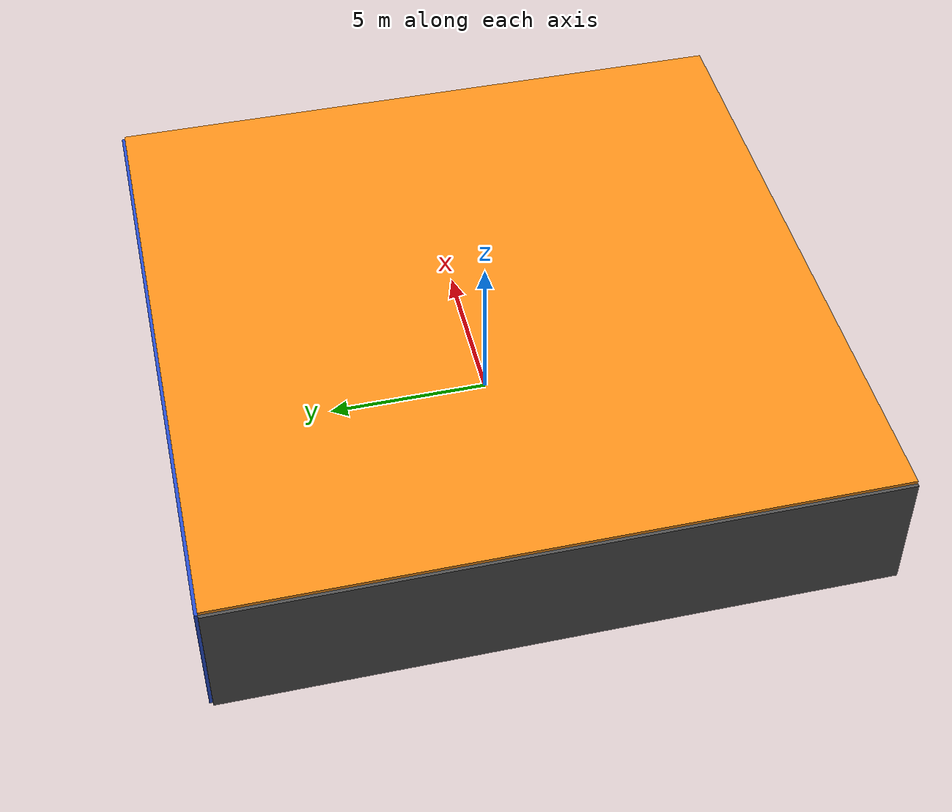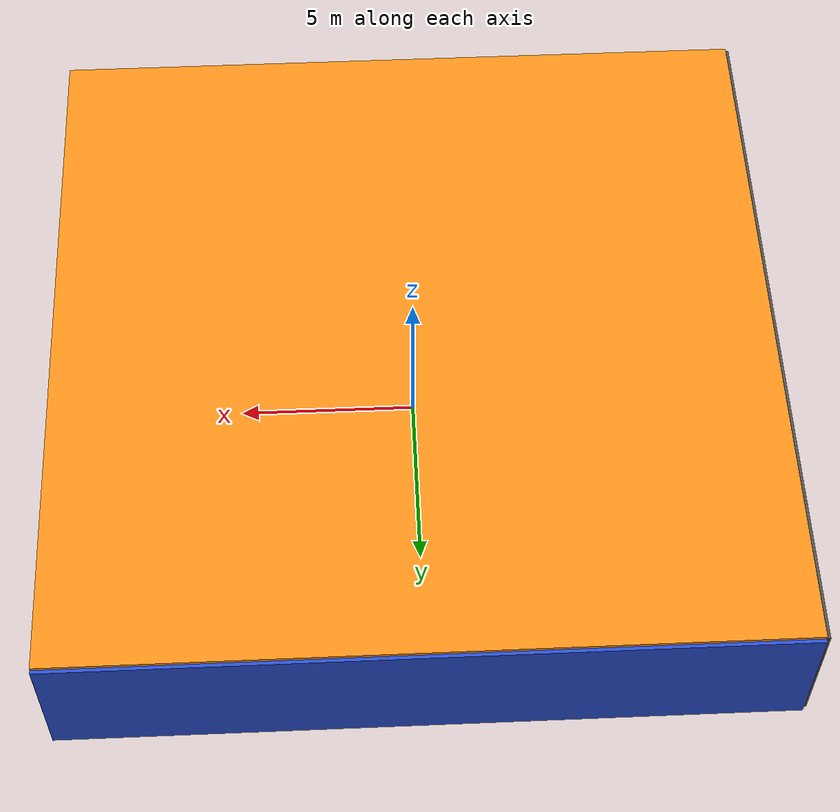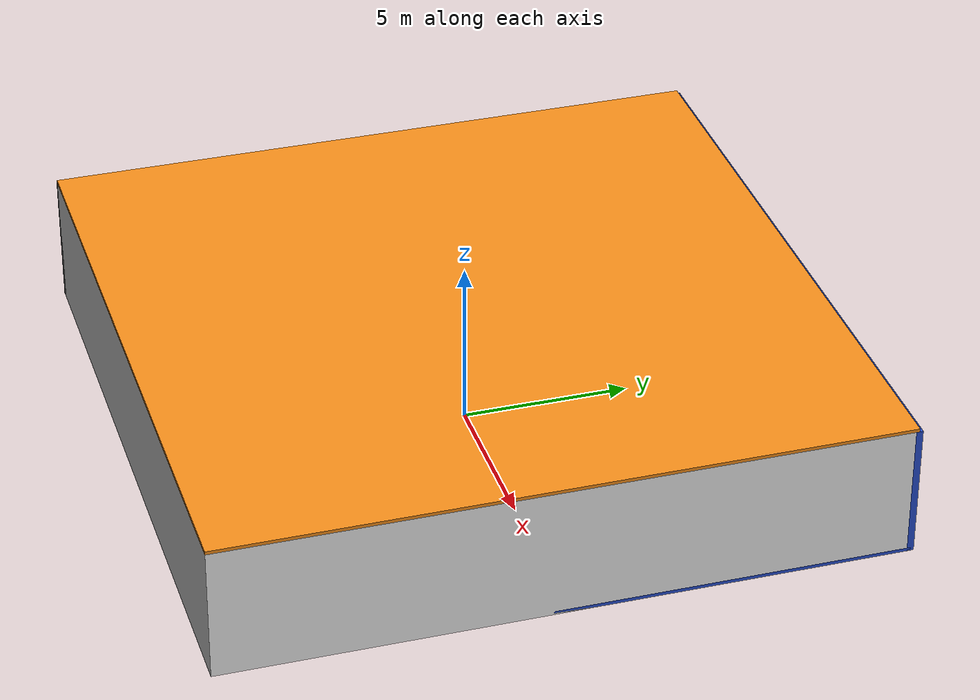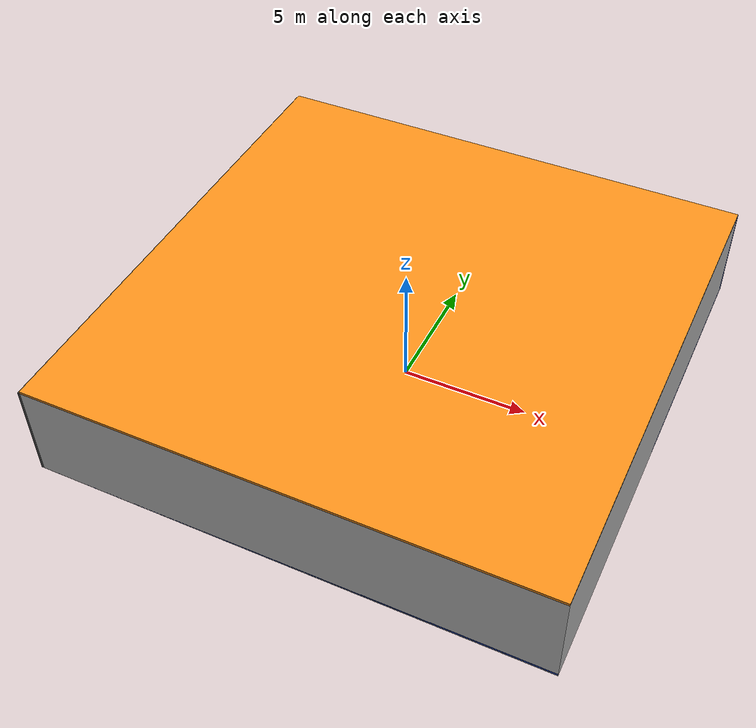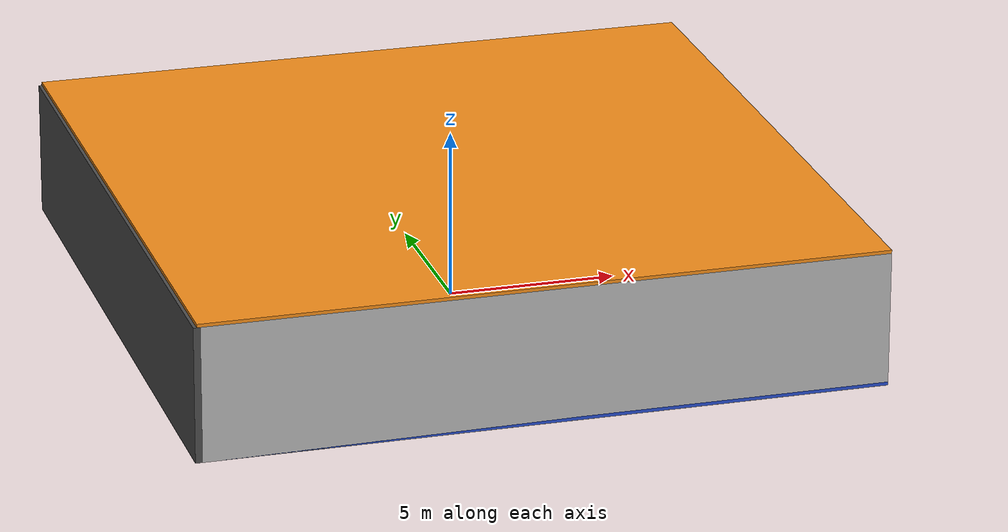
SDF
<sdf version="1.4">
 <world name="default">
  <physics type="ode">
   <max_step_size>0.001</max_step_size>
   <real_time_factor>1</real_time_factor>
   <real_time_update_rate>1000</real_time_update_rate>
   <gravity>0 0 -9.8</gravity>
  </physics>
  <scene><ambient>0.4 0.4 0.4 1</ambient><background>0.7 0.7 0.7 1</background><shadows>1</shadows></scene>
  <model name="Surrounding">
   <static>1</static>
   <link name="Ceiling">
    <collision name="Ceiling_Collision"><geometry><box><size>20 20 0.1</size></box></geometry></collision>
    <visual name="Ceiling_Visual">
     <geometry><box><size>20 20 0.1</size></box></geometry>
     <material>
      <script><uri>file://media/materials/scripts/gazebo.material</uri><name>Gazebo/Orange</name></script>
     </material>
    </visual>
    <pose>0 0 4.05 0 0 0</pose>
   </link>
   <link name="Wall_South">
    <collision name="Wall_South_Collision">
     <geometry><box><size>20 0 4</size></box></geometry>
     <pose>0 0 2 0 -0 0</pose>
    </collision>
    <visual name="Wall_South_Visual">
     <pose>0 0 2 0 -0 0</pose>
     <geometry><box><size>20 0 4</size></box></geometry>
     <material>
      <script><uri>file://media/materials/scripts/gazebo.material</uri><name>Gazebo/Pioneer2Body</name></script>
     </material>
    </visual>
    <velocity_decay><linear>0</linear><angular>0</angular></velocity_decay>
    <pose>0 -10 0 0 -0 0</pose>
   </link>
   <link name="Wall_East">
    <collision name="Wall_21_Collision">
     <geometry><box><size>20 0 4</size></box></geometry>
     <pose>0 0 2 0 -0 0</pose>
    </collision>
    <visual name="Wall_21_Visual">
     <pose>0 0 2 0 -0 0</pose>
     <geometry><box><size>20 0 4</size></box></geometry>
     <material>
      <script><uri>file://media/materials/scripts/gazebo.material</uri><name>Gazebo/WhiteGlow</name></script>
     </material>
    </visual>
    <velocity_decay><linear>0</linear><angular>0</angular></velocity_decay>
    <pose>10 0 0 0 -0 1.5708</pose>
   </link>
   <link name="Wall_North">
    <collision name="Wall_22_Collision">
     <geometry><box><size>20 0.2 4</size></box></geometry>
     <pose>0 0 2 0 -0 0</pose>
    </collision>
    <visual name="Wall_22_Visual">
     <pose>0 0 2 0 -0 0</pose>
     <geometry><box><size>20 0.2 4</size></box></geometry>
     <material>
      <script><uri>file://media/materials/scripts/gazebo.material</uri><name>Gazebo/BlueGlow</name></script>
     </material>
    </visual>
    <velocity_decay><linear>0</linear><angular>0</angular></velocity_decay>
    <pose>0 10 0 0 -0 0</pose>
   </link>
   <link name="Wall_West">
    <collision name="Wall_23_Collision">
     <geometry><box><size>20 0.2 4</size></box></geometry>
     <pose>0 0 2 0 -0 0</pose>
    </collision>
    <visual name="Wall_23_Visual">
     <pose>0 0 2 0 -0 0</pose>
     <geometry><box><size>20 0.2 4</size></box></geometry>
     <material>
      <script><uri>file://media/materials/scripts/gazebo.material</uri><name>Gazebo/Road</name></script>
     </material>
    </visual>
    <velocity_decay><linear>0</linear><angular>0</angular></velocity_decay>
    <pose>-10 0 0 0 0 -1.5708</pose>
   </link>
   <link name="Ground_link">
    <collision name="collision">
     <pose>0 0 .05 0 -0 0</pose>
     <geometry><box><size>20 20 0.1</size></box></geometry>
    </collision>
    <visual name="visual">
     <pose>0 0 .05 0 -0 0</pose>
     <geometry><box><size>20 20 0.1</size></box></geometry>
     <material>
      <script><uri>file://media/materials/scripts/gazebo.material</uri><name>Gazebo/BlueGlow</name></script>
     </material>
    </visual>
   </link>
   <static>1</static>
  </model>
  <spherical_coordinates>
   <surface_model>EARTH_WGS84</surface_model>
   <latitude_deg>0</latitude_deg>
   <longitude_deg>0</longitude_deg>
   <elevation>0</elevation>
   <heading_deg>0</heading_deg>
  </spherical_coordinates>
  <light name="lightball_0" type="diffuse">
   <diffuse>0.8 0.8 0.8 1</diffuse>
   <specular>0.2 0.2 0.2 1</specular>
   <attenuation>
    <range>100</range>
    <constant>0.7</constant>
    <linear>0.01</linear>
    <quadratic>0.001</quadratic>
   </attenuation>
   <direction>-0.5 0.1 -0.9</direction>
   <pose>7.86909683805 -0.0820444469278 0.815622953885 0 0 0</pose>
  </light>
  <light name="lightball_1" type="diffuse">
   <diffuse>0.8 0.8 0.8 1</diffuse>
   <specular>0.2 0.2 0.2 1</specular>
   <attenuation>
    <range>100</range>
    <constant>0.7</constant>
    <linear>0.01</linear>
    <quadratic>0.001</quadratic>
   </attenuation>
   <direction>-0.5 0.1 -0.9</direction>
   <pose>-0.0442050426222 7.9334849339 1.5210643577 0 0 0</pose>
  </light>
  <light name="lightball_2" type="diffuse">
   <diffuse>0.8 0.8 0.8 1</diffuse>
   <specular>0.2 0.2 0.2 1</specular>
   <attenuation>
    <range>100</range>
    <constant>0.7</constant>
    <linear>0.01</linear>
    <quadratic>0.001</quadratic>
   </attenuation>
   <direction>-0.5 0.1 -0.9</direction>
   <pose>-1.13984123629 2.35834366469 2.96319795936 0 0 0</pose>
  </light>
  <light name="lightball_3" type="diffuse">
   <diffuse>0.8 0.8 0.8 1</diffuse>
   <specular>0.2 0.2 0.2 1</specular>
   <attenuation>
    <range>100</range>
    <constant>0.7</constant>
    <linear>0.01</linear>
    <quadratic>0.001</quadratic>
   </attenuation>
   <direction>-0.5 0.1 -0.9</direction>
   <pose>-7.56571044657 -4.71531839148 3.74854769271 0 0 0</pose>
  </light>
  <light name="lightball_4" type="diffuse">
   <diffuse>0.8 0.8 0.8 1</diffuse>
   <specular>0.2 0.2 0.2 1</specular>
   <attenuation>
    <range>100</range>
    <constant>0.7</constant>
    <linear>0.01</linear>
    <quadratic>0.001</quadratic>
   </attenuation>
   <direction>-0.5 0.1 -0.9</direction>
   <pose>-7.4031416604 2.99918853526 2.14105594628 0 0 0</pose>
  </light>
  <light name="lightball_5" type="diffuse">
   <diffuse>0.8 0.8 0.8 1</diffuse>
   <specular>0.2 0.2 0.2 1</specular>
   <attenuation>
    <range>100</range>
    <constant>0.7</constant>
    <linear>0.01</linear>
    <quadratic>0.001</quadratic>
   </attenuation>
   <direction>-0.5 0.1 -0.9</direction>
   <pose>9.66289318388 -2.30776506681 2.38522222993 0 0 0</pose>
  </light>
  <include>
   <uri>model://robocup_3Dsim_goal</uri>
   <pose>-1.47247626695 6.75626433585 0 0 0 2.46188163215</pose>
  </include>
  <include>
   <uri>model://construction_cone</uri>
   <pose>2.05048790883 -6.53573798953 0 0 0 1.70899736624</pose>
  </include>
  <include>
   <uri>model://textured_shapes</uri>
   <pose>4.47707590369 0.974295099675 0 0 0 1.12168119278</pose>
  </include>
  <include>
   <uri>model://textured_shapes</uri>
   <pose>6.45235005486 -3.33322830625 0 0 0 2.4912031436</pose>
  </include>
  <include><uri>model://table</uri><pose>7.19885566793 -1.29950065414 0 0 0 1.4153032084</pose></include>
 </world>
</sdf>

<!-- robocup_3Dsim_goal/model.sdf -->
<sdf version="1.5">
  <model name="robocup_3d_goal">
    <static>true</static>
    <link name="left_post">
      <pose>0 1.05 0.45 0 0 0</pose>
      <collision name="collision">
        <geometry>
          <cylinder>
            <radius>0.05</radius>
            <length>0.9</length>
          </cylinder>
        </geometry>
      </collision>
      <visual name="visual">
        <geometry>
          <cylinder>
            <radius>0.05</radius>
            <length>0.9</length>
          </cylinder>
        </geometry>
        <material>
          <script>
            <uri>file://media/materials/scripts/gazebo.material</uri>
            <name>Gazebo/ZincYellow</name>
          </script>
        </material>
      </visual>
    </link>
    <link name="left_support_horiz_lower">
      <pose>0.30 1.05 0.01 0 0 0</pose>
      <collision name="collision">
        <geometry>
          <box>
            <size>0.50 0.02 0.02</size>
          </box>
        </geometry>
      </collision>
      <visual name="visual">
        <geometry>
          <box>
            <size>0.50 0.02 0.02</size>
          </box>
        </geometry>
        <material>
          <script>
            <uri>file://media/materials/scripts/gazebo.material</uri>
            <name>Gazebo/White</name>
          </script>
        </material>
      </visual>
    </link>
    <link name="left_support_horiz_upper">
      <pose>0.30 1.05 0.79 0 0 0</pose>
      <collision name="collision">
        <geometry>
          <box>
            <size>0.50 0.02 0.02</size>
          </box>
        </geometry>
      </collision>
      <visual name="visual">
        <geometry>
          <box>
            <size>0.50 0.02 0.02</size>
          </box>
        </geometry>
        <material>
          <script>
            <uri>file://media/materials/scripts/gazebo.material</uri>
            <name>Gazebo/White</name>
          </script>
        </material>
      </visual>
    </link>
    <link name="left_support_vertical">
      <pose>0.56 1.05 0.4 0 1.5708 0</pose>
      <collision name="collision">
        <geometry>
          <box>
            <size>0.80 0.02 0.02</size>
          </box>
        </geometry>
      </collision>
      <visual name="visual">
        <geometry>
          <box>
            <size>0.80 0.02 0.02</size>
          </box>
        </geometry>
        <material>
          <script>
            <uri>file://media/materials/scripts/gazebo.material</uri>
            <name>Gazebo/White</name>
          </script>
        </material>
      </visual>
    </link>
    <link name="right_support_horiz_lower">
      <pose>0.30 -1.05 0.01 0 0 0</pose>
      <collision name="collision">
        <geometry>
          <box>
            <size>0.50 0.02 0.02</size>
          </box>
        </geometry>
      </collision>
      <visual name="visual">
        <geometry>
          <box>
            <size>0.50 0.02 0.02</size>
          </box>
        </geometry>
        <material>
          <script>
            <uri>file://media/materials/scripts/gazebo.material</uri>
            <name>Gazebo/White</name>
          </script>
        </material>
      </visual>
    </link>
    <link name="right_support_horiz_upper">
      <pose>0.30 -1.05 0.79 0 0 0</pose>
      <collision name="collision">
        <geometry>
          <box>
            <size>0.50 0.02 0.02</size>
          </box>
        </geometry>
      </collision>
      <visual name="visual">
        <geometry>
          <box>
            <size>0.50 0.02 0.02</size>
          </box>
        </geometry>
        <material>
          <script>
            <uri>file://media/materials/scripts/gazebo.material</uri>
            <name>Gazebo/White</name>
          </script>
        </material>
      </visual>
    </link>
    <link name="right_support_vertical">
      <pose>0.56 -1.05 0.4 0 1.5708 0</pose>
      <collision name="collision">
        <geometry>
          <box>
            <size>0.80 0.02 0.02</size>
          </box>
        </geometry>
      </collision>
      <visual name="visual">
        <geometry>
          <box>
            <size>0.80 0.02 0.02</size>
          </box>
        </geometry>
        <material>
          <script>
            <uri>file://media/materials/scripts/gazebo.material</uri>
            <name>Gazebo/White</name>
          </script>
        </material>
      </visual>
    </link>
    <link name="center_support_horiz_lower">
      <pose>0.56 0 0.01 0 1.5708 0</pose>
      <collision name="collision">
        <geometry>
          <box>
            <size>0.02 2.08 0.02</size>
          </box>
        </geometry>
      </collision>
      <visual name="visual">
        <geometry>
          <box>
            <size>0.02 2.08 0.02</size>
          </box>
        </geometry>
        <material>
          <script>
            <uri>file://media/materials/scripts/gazebo.material</uri>
            <name>Gazebo/White</name>
          </script>
        </material>
      </visual>
    </link>
    <link name="center_support_horiz_upper">
      <pose>0.56 0 0.79 0 1.5708 0</pose>
      <collision name="collision">
        <geometry>
          <box>
            <size>0.02 2.08 0.02</size>
          </box>
        </geometry>
      </collision>
      <visual name="visual">
        <geometry>
          <box>
            <size>0.02 2.08 0.02</size>
          </box>
        </geometry>
        <material>
          <script>
            <uri>file://media/materials/scripts/gazebo.material</uri>
            <name>Gazebo/White</name>
          </script>
        </material>
      </visual>
    </link>
    <link name="right_post">
      <pose>0 -1.05 0.45 0 0 0</pose>
      <collision name="collision">
        <geometry>
          <cylinder>
            <radius>0.05</radius>
            <length>0.9</length>
          </cylinder>
        </geometry>
      </collision>
      <visual name="visual">
        <geometry>
          <cylinder>
            <radius>0.05</radius>
            <length>0.9</length>
          </cylinder>
        </geometry>
        <material>
          <script>
            <uri>file://media/materials/scripts/gazebo.material</uri>
            <name>Gazebo/ZincYellow</name>
          </script>
        </material>
      </visual>
    </link>
    <link name="crossbar">
      <pose>0 0 0.85 1.57 1.57 0</pose>
      <collision name="collision">
        <geometry>
          <cylinder>
            <radius>0.05</radius>
            <length>2.0</length>
          </cylinder>
        </geometry>
      </collision>
      <visual name="visual">
        <geometry>
          <cylinder>
            <radius>0.05</radius>
            <length>2.0</length>
          </cylinder>
        </geometry>
        <material>
          <script>
            <uri>file://media/materials/scripts/gazebo.material</uri>
            <name>Gazebo/ZincYellow</name>
          </script>
        </material>
      </visual>
    </link>
    <link name="center_net">
      <pose>0.56 0 0.40 0 0 0</pose>
      <collision name="collision">
        <geometry>
          <box>
            <size>0.01 2.1 0.80</size>
          </box>
        </geometry>
      </collision>
      <visual name="visual">
        <geometry>
          <box>
            <size>0.01 2.1 0.80</size>
          </box>
        </geometry>
        <material>
          <script>
            <uri>model://../model_source/models/robocup09_spl_field/materials/scripts/</uri>
            <uri>model://../model_source/models/robocup09_spl_field/materials/textures/</uri>
            <name>RoboCup/Net</name>
          </script>
        </material>
      </visual>
    </link>
    <link name="left_net">
      <pose>0.30 1.05 0.40 0 0 0</pose>
      <collision name="collision">
        <geometry>
          <box>
            <size>0.50 0.01 0.76</size>
          </box>
        </geometry>
      </collision>
      <visual name="visual">
        <geometry>
          <box>
            <size>0.50 0.01 0.76</size>
          </box>
        </geometry>
        <material>
          <script>
            <uri>model://../model_source/models/robocup09_spl_field/materials/scripts/</uri>
            <uri>model://../model_source/models/robocup09_spl_field/materials/textures/</uri>
            <name>RoboCup/Net</name>
          </script>
        </material>
      </visual>
    </link>
    <link name="right_net">
      <pose>0.30 -1.05 0.40 0 0 0</pose>
      <collision name="collision">
        <geometry>
          <box>
            <size>0.50 0.01 0.76</size>
          </box>
        </geometry>
      </collision>
      <visual name="visual">
        <geometry>
          <box>
            <size>0.50 0.01 0.76</size>
          </box>
        </geometry>
        <material>
          <script>
            <uri>model://../model_source/models/robocup09_spl_field/materials/scripts/</uri>
            <uri>model://../model_source/models/robocup09_spl_field/materials/textures/</uri>
            <name>RoboCup/Net</name>
          </script>
        </material>
      </visual>
    </link>
  </model>
</sdf>

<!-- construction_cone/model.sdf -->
<sdf version="1.5">
  <model name="Construction Cone">
    <link name="link">
      <collision name="collision">
        <geometry>
          <mesh>
            <scale>10 10 10</scale>
            <uri>file://isr-testbed/construction_cone/meshes/construction_cone.dae</uri>
          </mesh>
        </geometry>
      </collision>
      <visual name="visual">
        <geometry>
          <mesh>
            <scale>10 10 10</scale>
            <uri>file://isr-testbed/construction_cone/meshes/construction_cone.dae</uri>
          </mesh>
        </geometry>
      </visual>
    </link>
  </model>
</sdf>

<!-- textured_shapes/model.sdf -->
<sdf version="1.6">
  <model name="textured_shapes">
    <pose>0 0 0.5 0 0 0</pose>
    <link name="box">
      <pose>0 -1.5 0 0 0 0</pose>
      <collision name="collision">
        <geometry>
          <box>
            <size>1 1 1</size>
          </box>
        </geometry>
      </collision>
      <visual name="visual">
        <geometry>
          <box>
            <size>1 1 1</size>
          </box>
        </geometry>
        <material>
          <script>
            <uri>model://../model_source/models/textured_shapes/materials/scripts</uri>
            <uri>model://../model_source/models/textured_shapes/materials/textures</uri>
            <name>TexturedShape/Squares</name>
          </script>
        </material>
      </visual>
    </link>
    <link name="sphere">
      <collision name="collision">
        <geometry>
          <sphere>
            <radius>0.5</radius>
          </sphere>
        </geometry>
      </collision>
      <visual name="visual">
        <geometry>
          <sphere>
            <radius>0.5</radius>
          </sphere>
        </geometry>
        <material>
          <script>
            <uri>model://../model_source/models/textured_shapes/materials/scripts</uri>
            <uri>model://../model_source/models/textured_shapes/materials/textures</uri>
            <name>TexturedShape/Squares</name>
          </script>
        </material>
      </visual>
    </link>
    <link name="cylinder">
      <pose>0 1.5 0 0 0 0</pose>
      <collision name="collision">
        <geometry>
          <cylinder>
            <radius>0.5</radius>
            <length>1</length>
          </cylinder>
        </geometry>
      </collision>
      <visual name="visual">
        <geometry>
          <cylinder>
            <radius>0.5</radius>
            <length>1</length>
          </cylinder>
        </geometry>
        <material>
          <script>
            <uri>model://../model_source/models/textured_shapes/materials/scripts</uri>
            <uri>model://../model_source/models/textured_shapes/materials/textures</uri>
            <name>TexturedShape/Squares</name>
          </script>
        </material>
      </visual>
    </link>
  </model>
</sdf>

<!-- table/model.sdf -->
<sdf version="1.5">
  <model name="table">
    <static>true</static>
    <link name="link">
      <collision name="surface">
        <pose>0 0 1.0 0 0 0</pose>
        <geometry>
          <box>
            <size>1.5 0.8 0.03</size>
          </box>
        </geometry>
        <surface>
          <friction>
            <ode>
              <mu>0.6</mu>
              <mu2>0.6</mu2>
            </ode>
          </friction>
        </surface>
      </collision>
      <visual name="visual1">
        <pose>0 0 1.0 0 0 0</pose>
        <geometry>
          <box>
            <size>1.5 0.8 0.03</size>
          </box>
        </geometry>
        <material>
          <script>
            <uri>model://media/materials/scripts/gazebo.material</uri>
            <name>Gazebo/Wood</name>
          </script>
        </material>
      </visual>
      <collision name="front_left_leg">
        <pose>0.68 0.38 0.5 0 0 0</pose>
        <geometry>
          <cylinder>
            <radius>0.02</radius>
            <length>1.0</length>
          </cylinder>
        </geometry>
      </collision>
      <visual name="front_left_leg">
        <pose>0.68 0.38 0.5 0 0 0</pose>
        <geometry>
          <cylinder>
            <radius>0.02</radius>
            <length>1.0</length>
          </cylinder>
        </geometry>
        <material>
          <script>
            <uri>model://media/materials/scripts/gazebo.material</uri>
            <name>Gazebo/Grey</name>
          </script>
        </material>
      </visual>
      <collision name="front_right_leg">
        <pose>0.68 -0.38 0.5 0 0 0</pose>
        <geometry>
          <cylinder>
            <radius>0.02</radius>
            <length>1.0</length>
          </cylinder>
        </geometry>
      </collision>
      <visual name="front_right_leg">
        <pose>0.68 -0.38 0.5 0 0 0</pose>
        <geometry>
          <cylinder>
            <radius>0.02</radius>
            <length>1.0</length>
          </cylinder>
        </geometry>
        <material>
          <script>
            <uri>model://media/materials/scripts/gazebo.material</uri>
            <name>Gazebo/Grey</name>
          </script>
        </material>
      </visual>
      <collision name="back_right_leg">
        <pose>-0.68 -0.38 0.5 0 0 0</pose>
        <geometry>
          <cylinder>
            <radius>0.02</radius>
            <length>1.0</length>
          </cylinder>
        </geometry>
      </collision>
      <visual name="back_right_leg">
        <pose>-0.68 -0.38 0.5 0 0 0</pose>
        <geometry>
          <cylinder>
            <radius>0.02</radius>
            <length>1.0</length>
          </cylinder>
        </geometry>
        <material>
          <script>
            <uri>model://media/materials/scripts/gazebo.material</uri>
            <name>Gazebo/Grey</name>
          </script>
        </material>
      </visual>
      <collision name="back_left_leg">
        <pose>-0.68 0.38 0.5 0 0 0</pose>
        <geometry>
          <cylinder>
            <radius>0.02</radius>
            <length>1.0</length>
          </cylinder>
        </geometry>
      </collision>
      <visual name="back_left_leg">
        <pose>-0.68 0.38 0.5 0 0 0</pose>
        <geometry>
          <cylinder>
            <radius>0.02</radius>
            <length>1.0</length>
          </cylinder>
        </geometry>
        <material>
          <script>
            <uri>model://media/materials/scripts/gazebo.material</uri>
            <name>Gazebo/Grey</name>
          </script>
        </material>
      </visual>
    </link>
  </model>
</sdf>
